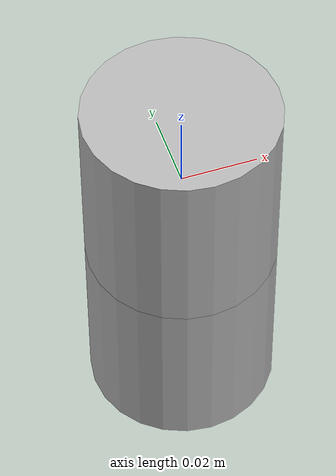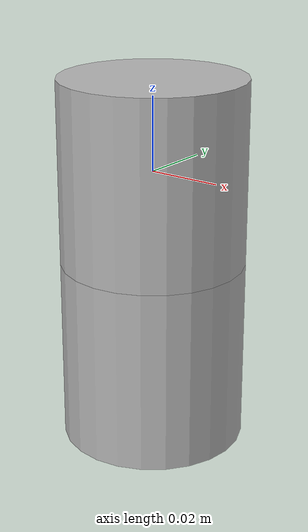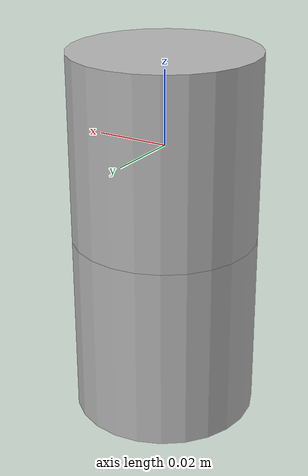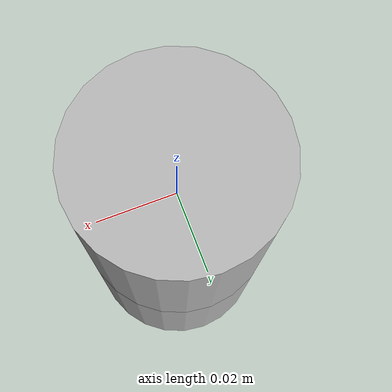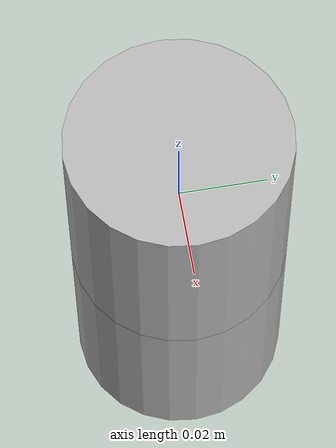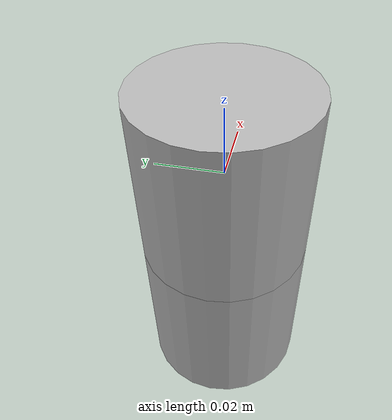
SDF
<sdf version='1.5'>
  <world name="default">
    <include>
      <uri>model://sun</uri>
    </include>
    <physics name="dart" type="dart">
    </physics>
  <model name='robot'>
    <pose frame=''>0 0 0 0 -0 0</pose>
    <link name='base_link'>
      <pose frame=''>0 0 0 0 -0 0</pose>
      <inertial>
        <pose frame=''>0 0 0 0 -0 0</pose>
        <mass>0.159</mass>
        <inertia>
          <ixx>5.7969e-05</ixx>
          <ixy>0</ixy>
          <ixz>0</ixz>
          <iyy>5.7969e-05</iyy>
          <iyz>0</iyz>
          <izz>4.9687e-05</izz>
        </inertia>
      </inertial>
      <collision name='base_link_collision'>
        <pose frame=''>0 0 0 0 -0 0</pose>
        <geometry>
          <cylinder>
            <length>0.05</length>
            <radius>0.025</radius>
          </cylinder>
        </geometry>
      </collision>
      <visual name='base_link_visual'>
        <pose frame=''>0 0 0 0 -0 0</pose>
        <geometry>
          <cylinder>
            <length>0.05</length>
            <radius>0.025</radius>
          </cylinder>
        </geometry>
      </visual>
    </link>
    <joint name='world' type='revolute'>
      <child>base_link</child>
      <parent>world</parent>
      <axis>
        <xyz>1 0 0</xyz>
        <limit>
          <lower>-3.14</lower>
          <upper>3.14</upper>
          <effort>1000</effort>
          <velocity>1</velocity>
        </limit>
        <dynamics>
          <friction>0</friction>
          <damping>0</damping>
          <spring_reference>0</spring_reference>
          <spring_stiffness>0</spring_stiffness>
        </dynamics>
        <use_parent_model_frame>1</use_parent_model_frame>
      </axis>
    </joint>
    <link name='link02'>
      <pose frame=''>0 0 -0.05 0 -0 0</pose>
      <inertial>
        <pose frame=''>0 0 0 0 -0 0</pose>
        <mass>0.159</mass>
        <inertia>
          <ixx>5.7969e-05</ixx>
          <ixy>0</ixy>
          <ixz>0</ixz>
          <iyy>5.7969e-05</iyy>
          <iyz>0</iyz>
          <izz>4.9687e-05</izz>
        </inertia>
      </inertial>
      <collision name='link02_collision'>
        <pose frame=''>0 0 0 0 -0 0</pose>
        <geometry>
          <cylinder>
            <length>0.05</length>
            <radius>0.025</radius>
          </cylinder>
        </geometry>
      </collision>
      <visual name='link02_visual'>
        <pose frame=''>0 0 0 0 -0 0</pose>
        <geometry>
          <cylinder>
            <length>0.05</length>
            <radius>0.025</radius>
          </cylinder>
        </geometry>
      </visual>
    </link>
    <link name='joint_02_spring'>
      <visual name='joint_02_spring_visual'>
        <geometry>
          <cylinder>
            <length>0.002</length>
            <radius>0.001</radius>
          </cylinder>
        </geometry>
      </visual>
      <pose frame=''>0 0 -0.025 0 -0 0</pose>
      <inertial>
        <pose frame=''>0 0 -0.025 0 -0 0</pose>
        <mass>0.001</mass>
        <inertia>
          <ixx>0.0</ixx>
          <ixy>0</ixy>
          <ixz>0</ixz>
          <iyy>0.0</iyy>
          <iyz>0</iyz>
          <izz>0.0</izz>
        </inertia>
      </inertial>
    </link>
    <joint name='joint_02_m' type='revolute'>
      <parent>base_link</parent>
      <child>joint_02_spring</child>
      <axis>
        <xyz>0 1 0</xyz>
        <limit>
          <lower>-1.57075</lower>
          <upper>1.57075</upper>
          <effort>1000</effort>
          <velocity>10</velocity>
        </limit>
      </axis>
    </joint>
    <joint name='joint_02_out' type='revolute'>
      <parent>joint_02_spring</parent>
      <child>link02</child>
      <axis>
        <xyz>0 1 0</xyz>
        <limit>
          <lower>-1.57075</lower>
          <upper>1.57075</upper>
          <effort>1000</effort>
          <velocity>10</velocity>
        </limit>
        <dynamics>
          <friction>0.2</friction>
          <spring_reference>0</spring_reference>
          <spring_stiffness>5.0</spring_stiffness>
        </dynamics>
        <use_parent_model_frame>1</use_parent_model_frame>
      </axis>
    </joint>
    <plugin name="sea_plugin" filename="sea_plugin/libSEAPlugin.so">
      <series-elastic>
        <name>SEA_0</name>
        <motor-joint>joint_02_m</motor-joint>
        <load-joint>joint_02_out</load-joint>
        <motor-inertia>0.065</motor-inertia>
        <motor-damping>0.2</motor-damping>
        <motor-friction>0.014</motor-friction>
        <load-inertia>0.065</load-inertia>
        <load-damping>0.2</load-damping>
        <load-friction>0.014</load-friction>
        <spring-stiffness>7.5</spring-stiffness>
      </series-elastic>
    </plugin>
  </model>
  </world>
</sdf>
